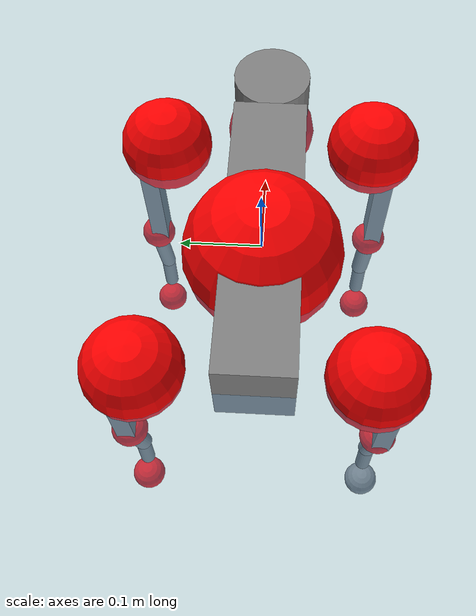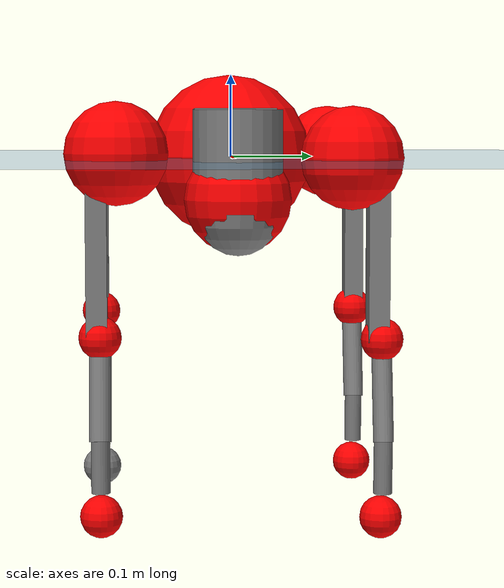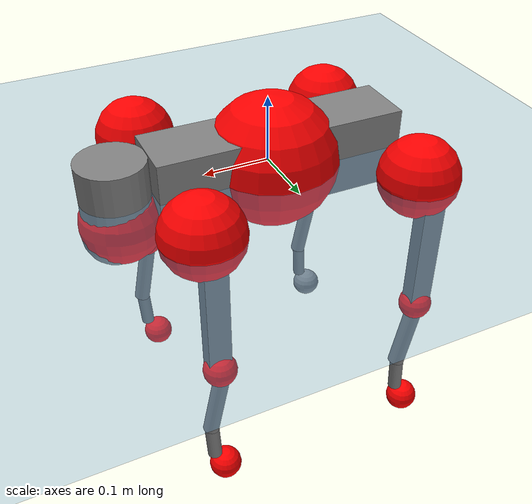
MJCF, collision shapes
<mujoco model="go2">
  <compiler angle="radian" assetdir="assets" balanceinertia="true" inertiafromgeom="false"/>

  <option timestep="0.005" density="1.2" viscosity="2e-05"/>

  <size nkey="1"/>

  <visual>
    <quality shadowsize="8192"/>
    <map shadowclip="0.5"/>
  </visual>

  <default>
    <default class="/">
      <geom contype="0" conaffinity="0" group="1" solref="-1000 -80"/>
      <site size="0.01 0.005 0.005" group="5"/>
      <general forcelimited="true" biastype="affine" gainprm="20" biasprm="0 -20 -0.5"/>
      <default class="go2">
        <joint armature="0.01" damping="0.01" frictionloss="0.2"/>
        <geom condim="1" margin="0.001"/>
        <default class="visual">
          <geom type="mesh" group="2"/>
        </default>
        <default class="collision">
          <geom group="3"/>
          <default class="foot">
            <geom size="0.022 0 0" condim="6" priority="1" friction="0.8 0.02 0.01" solimp="0.015 1 0.022"/>
          </default>
        </default>
        <default class="reward_collision_sphere">
          <geom group="5" rgba="1 0 0 1"/>
        </default>
      </default>
    </default>
  </default>

  <asset>
    <texture type="skybox" colorspace="auto" name="//unnamed_texture_0" builtin="gradient" rgb1="0.95 0.95 0.95" rgb2="0.95 0.95 0.95" width="100" height="600"/>
    <texture type="2d" colorspace="auto" name="texplane" builtin="checker" rgb1="0.345 0.575 0.748" rgb2="0.345 0.575 0.748" markrgb="1 1 1" width="512" height="512"/>
    <material name="MatPlane" class="/" texture="texplane" texuniform="true" texrepeat="2 2" specular="0.9"/>
    <material name="metal" class="/" rgba="0.9 0.95 0.95 1"/>
    <material name="black" class="/" rgba="0 0 0 1"/>
    <material name="white" class="/"/>
    <material name="gray" class="/" rgba="0.671705 0.692426 0.77427 1"/>
    <mesh name="base_0" class="/" file="base_0.obj"/>
    <mesh name="base_1" class="/" file="base_1.obj"/>
    <mesh name="base_2" class="/" file="base_2.obj"/>
    <mesh name="base_3" class="/" file="base_3.obj"/>
    <mesh name="base_4" class="/" file="base_4.obj"/>
    <mesh name="hip_0" class="/" file="hip_0.obj"/>
    <mesh name="hip_1" class="/" file="hip_1.obj"/>
    <mesh name="thigh_0" class="/" file="thigh_0.obj"/>
    <mesh name="thigh_1" class="/" file="thigh_1.obj"/>
    <mesh name="thigh_mirror_0" class="/" file="thigh_mirror_0.obj"/>
    <mesh name="thigh_mirror_1" class="/" file="thigh_mirror_1.obj"/>
    <mesh name="calf_0" class="/" file="calf_0.obj"/>
    <mesh name="calf_1" class="/" file="calf_1.obj"/>
    <mesh name="calf_mirror_0" class="/" file="calf_mirror_0.obj"/>
    <mesh name="calf_mirror_1" class="/" file="calf_mirror_1.obj"/>
    <mesh name="foot" class="/" file="foot.obj"/>
  </asset>

  <worldbody>
    <geom name="floor" class="/" size="100 100 0.125" type="plane" group="0" material="MatPlane"/>
    <light name="toplight_shadow" class="/" pos="0 0 5" dir="0.0990148 0.0990148 -0.990148" type="directional" ambient="0.04 0.04 0.04" diffuse="0.55 0.55 0.55" specular="0.12 0.12 0.12"/>
    <light name="toplight_fill" class="/" pos="0 0 5" dir="0.0990148 0.0990148 -0.990148" type="directional" castshadow="false" ambient="0.04 0.04 0.04" diffuse="0.3 0.3 0.3" specular="0.08 0.08 0.08"/>
    <body name="trunk" childclass="go2" pos="-0.00701481 -0.00183331 9.15749e-05" quat="0.999996 0.000509367 -0.00261625 -0.000909806">
      <inertial pos="0.0238751 0.000307545 -0.0072375" quat="0.00764289 0.716605 0.00513844 0.697418" mass="7.64273" diaginertia="0.0430028 0.226796 0.0236565"/>
      <joint name="//unnamed_joint_0" type="free" armature="0" damping="0" frictionloss="0"/>
      <geom name="//unnamed_geom_1" class="visual" material="black" mesh="base_0"/>
      <geom name="//unnamed_geom_2" class="visual" material="black" mesh="base_1"/>
      <geom name="//unnamed_geom_3" class="visual" material="black" mesh="base_2"/>
      <geom name="//unnamed_geom_4" class="visual" material="white" mesh="base_3"/>
      <geom name="//unnamed_geom_5" class="visual" material="gray" mesh="base_4"/>
      <geom name="trunk_1" class="collision" size="0.188281 0.0467949 0.0570548" type="box"/>
      <geom name="trunk_2" class="collision" size="0.050048 0.0450432" pos="0.237181 0 0.00989244" type="cylinder"/>
      <geom name="trunk_3" class="collision" size="0.0470452" pos="0.243838 0 -0.0593547"/>
      <geom name="//unnamed_geom_9" class="reward_collision_sphere" size="0.100096"/>
      <geom name="//unnamed_geom_10" class="reward_collision_sphere" size="0.0600576" pos="0.233019 0 -0.044516"/>
      <site name="imu" pos="-0.0312437 -0.0041925 0.0157993" size="0.0100096"/>
      <camera name="track" pos="0 -2.36285 0" quat="0.707107 0.707107 0 0" mode="trackcom"/>
      <camera name="ego_camera" pos="0.25965 0 0.044516" quat="-0.5 -0.5 0.5 0.5"/>
      <body name="FL_hip" pos="0.161875 0.0531851 0.000248493" quat="1 -3.57644e-05 7.7733e-05 -4.53276e-05">
        <inertial pos="-0.00197868 0.00518936 -0.00313357" quat="0.49839 0.501999 0.496361 0.503219" mass="0.699019" diaginertia="0.000330213 0.00139899 0.000453848"/>
        <joint name="FL_hip_joint" pos="0 0 0" axis="0.99938 0.00775679 0.0343335" range="-1.17892 1.00108" armature="0.0103071" damping="0.0074827" frictionloss="0.192429"/>
        <geom name="//unnamed_geom_11" class="visual" material="metal" mesh="hip_0"/>
        <geom name="//unnamed_geom_12" class="visual" material="gray" mesh="hip_1"/>
        <geom name="//unnamed_geom_13" class="collision" size="0.0460442 0.0200192" pos="0 0.0945141 0" quat="0.707107 0.707107 0 0" type="cylinder"/>
        <geom name="//unnamed_geom_14" class="reward_collision_sphere" size="0.0600576" pos="0 0.0826998 0"/>
        <body name="FL_thigh" pos="-0.000394178 0.113057 -0.00118102" quat="0.999998 -9.55844e-05 -0.000409715 0.00211554">
          <inertial pos="-0.00582481 -0.0245004 -0.0268985" quat="0.82998 0.0853117 -0.0195727 0.550883" mass="1.17105" diaginertia="0.00245018 0.0142481 0.000782112"/>
          <joint name="FL_thigh_joint" pos="0 0 0" axis="0.00678437 0.999976 -0.00115206" stiffness="0.0376425" range="-1.56809 3.49324" armature="0.0097939" damping="0" frictionloss="0.188584"/>
          <geom name="//unnamed_geom_15" class="visual" material="metal" mesh="thigh_0"/>
          <geom name="//unnamed_geom_16" class="visual" material="gray" mesh="thigh_1"/>
          <geom name="//unnamed_geom_17" class="collision" size="0.106602 0.0122618 0.0170163" pos="0 0 -0.105355" quat="0.707107 0 0.707107 0" type="box"/>
          <body name="FL_calf" pos="-0.000709109 0.0054325 -0.209695" quat="1 -0.000491986 -0.000679166 0.000154574">
            <inertial pos="0.00918675 -0.000115323 -0.142001" quat="0.710858 0.00484142 -0.00614283 0.703292" mass="0.239398" diaginertia="0.000548941 0.00298831 4.66139e-05"/>
            <joint name="FL_calf_joint" pos="0 0 0" axis="-0.00902684 0.999953 -0.00367536" range="-2.61365 -0.797909" armature="0.00979286" damping="0.0270627" frictionloss="0.194072"/>
            <geom name="//unnamed_geom_18" class="visual" material="gray" mesh="calf_0"/>
            <geom name="//unnamed_geom_19" class="visual" material="black" mesh="calf_1"/>
            <geom name="FL_calf0" class="collision" size="0.0120115 0.0600576" pos="0.0066577 0 -0.0593547" quat="0.994493 0 -0.104807 0" type="cylinder"/>
            <geom name="//unnamed_geom_21" class="collision" size="0.0110106 0.0325312" pos="0.0166442 0 -0.146408" quat="0.999688 0 0.0249974 0" type="cylinder"/>
            <geom name="//unnamed_geom_22" class="visual" pos="0 0 -0.210709" quat="1 0 0 0" material="black" mesh="foot"/>
            <geom name="FL_foot" class="foot" size="0.0162418" pos="-0.00166442 0 -0.210709"/>
            <geom name="//unnamed_geom_24" class="reward_collision_sphere" size="0.025024"/>
            <geom name="//unnamed_geom_25" class="reward_collision_sphere" size="0.025024" pos="-0.00166442 0 -0.210709"/>
            <site name="FL_foot" class="foot" pos="-0.00166442 0 -0.210709" size="0.0100096"/>
          </body>
        </body>
      </body>
      <body name="FR_hip" pos="0.164318 -0.0538731 0.00594422" quat="0.999998 0.000688511 0.00134696 0.000902477">
        <inertial pos="-0.00502297 0.00254674 0.000270698" quat="0.484493 0.500802 0.51347 0.500813" mass="0.689987" diaginertia="0.0003711 0.00139346 0.000471371"/>
        <joint name="FR_hip_joint" pos="0 0 0" axis="0.999996 -0.0025844 0.00129336" range="-1.02543 1.0449" armature="0.0107648" damping="0.0211923" frictionloss="0.243531"/>
        <geom name="//unnamed_geom_26" class="visual" pos="0 1.67421e-09 7.18102e-08" quat="4.63268e-05 1 0 0" material="metal" mesh="hip_0"/>
        <geom name="//unnamed_geom_27" class="visual" pos="0 2.71409e-09 -1.77614e-07" quat="4.63268e-05 1 0 0" material="gray" mesh="hip_1"/>
        <geom name="//unnamed_geom_28" class="collision" size="0.0460442 0.0200192" pos="0 -0.0945141 0" quat="0.707107 0.707107 0 0" type="cylinder"/>
        <geom name="//unnamed_geom_29" class="reward_collision_sphere" size="0.0600576" pos="0 -0.0826998 0"/>
        <body name="FR_thigh" pos="-0.000229033 -0.106096 -0.000795345" quat="0.999999 -0.000674103 -0.000293467 -0.000786533">
          <inertial pos="-0.00399139 0.0295642 -0.0343129" quat="0.545664 -0.0134775 0.0842546 0.833649" mass="1.1347" diaginertia="0.00231953 0.0132528 0.000791925"/>
          <joint name="FR_thigh_joint" pos="0 0 0" axis="0.016714 -0.999856 -0.00281247" stiffness="0.00637873" range="-3.54042 1.49424" armature="0.0102087" damping="0.00377307" frictionloss="0.202555"/>
          <geom name="//unnamed_geom_30" class="visual" material="metal" mesh="thigh_mirror_0"/>
          <geom name="//unnamed_geom_31" class="visual" material="gray" mesh="thigh_mirror_1"/>
          <geom name="//unnamed_geom_32" class="collision" size="0.106602 0.0122618 0.0170163" pos="0 0 -0.105355" quat="0.707107 0 0.707107 0" type="box"/>
          <body name="FR_calf" pos="-0.00162774 0.00354705 -0.21184" quat="1 -0.000159049 0.000209025 3.53776e-05">
            <inertial pos="0.00591628 0.00257772 -0.139351" quat="0.706454 -0.0274848 0.0107446 0.707144" mass="0.23827" diaginertia="0.000598759 0.00338408 5.21371e-05"/>
            <joint name="FR_calf_joint" pos="0 0 0" axis="-0.00179116 -0.999574 0.0291206" stiffness="0.0266041" range="0.873806 2.67077" armature="0.00930905" damping="0" frictionloss="0.193923"/>
            <geom name="//unnamed_geom_33" class="visual" material="gray" mesh="calf_mirror_0"/>
            <geom name="//unnamed_geom_34" class="visual" material="black" mesh="calf_mirror_1"/>
            <geom name="FR_calf0" class="collision" size="0.0130125 0.0600576" pos="0.00832212 0 -0.0593547" quat="0.995004 0 -0.0998334 0" type="cylinder"/>
            <geom name="//unnamed_geom_36" class="collision" size="0.0110106 0.0325312" pos="0.0166442 0 -0.146408" quat="0.999688 0 0.0249974 0" type="cylinder"/>
            <geom name="//unnamed_geom_37" class="visual" pos="0 0 -0.210709" quat="1 0 0 0" material="black" mesh="foot"/>
            <geom name="FR_foot" class="foot" size="0.0221926" pos="-0.00166442 0 -0.210709"/>
            <geom name="//unnamed_geom_39" class="reward_collision_sphere" size="0.025024"/>
            <geom name="//unnamed_geom_40" class="reward_collision_sphere" size="0.025024" pos="-0.00166442 0 -0.210709"/>
            <site name="FR_foot" class="foot" pos="-0.00166442 0 -0.210709" size="0.0100096"/>
          </body>
        </body>
      </body>
      <body name="RL_hip" pos="-0.163376 0.0553864 0.00367546" quat="1 0.000496857 -0.00055192 1.98833e-05">
        <inertial pos="0.00516698 -0.00380605 0.00299614" quat="0.511186 0.494891 0.520695 0.471857" mass="0.647214" diaginertia="0.000371933 0.00139585 0.000436174"/>
        <joint name="RL_hip_joint" pos="0 0 0" axis="-0.999693 -0.0046167 0.0243414" range="-1.09237 1.07221" armature="0.0118089" damping="0" frictionloss="0.150185"/>
        <geom name="//unnamed_geom_41" class="visual" pos="1.368e-09 0 2.68159e-07" quat="4.63268e-05 0 1 0" material="metal" mesh="hip_0"/>
        <geom name="//unnamed_geom_42" class="visual" pos="2.21769e-09 0 2.37819e-07" quat="4.63268e-05 0 1 0" material="gray" mesh="hip_1"/>
        <geom name="//unnamed_geom_43" class="collision" size="0.0460442 0.0200192" pos="0 0.0945141 0" quat="0.707107 0.707107 0 0" type="cylinder"/>
        <geom name="//unnamed_geom_44" class="reward_collision_sphere" size="0.0600576" pos="0 0.0826998 0"/>
        <body name="RL_thigh" pos="-0.000487221 0.11758 -0.00499516" quat="0.999999 0.000339074 0.00106535 -0.00018446">
          <inertial pos="-0.00278027 -0.0251535 -0.0298871" quat="0.831093 0.0834938 -0.0155047 0.549611" mass="1.08978" diaginertia="0.00246895 0.0141513 0.000830082"/>
          <joint name="RL_thigh_joint" pos="0 0 0" axis="0.0045895 0.999963 -0.00731634" range="-0.493006 4.55303" armature="0.00853312" damping="0.00863221" frictionloss="0.202938"/>
          <geom name="//unnamed_geom_45" class="visual" material="metal" mesh="thigh_0"/>
          <geom name="//unnamed_geom_46" class="visual" material="gray" mesh="thigh_1"/>
          <geom name="//unnamed_geom_47" class="collision" size="0.106602 0.0122618 0.0170163" pos="0 0 -0.105355" quat="0.707107 0 0.707107 0" type="box"/>
          <body name="RL_calf" pos="5.21229e-05 -0.000620407 -0.204881" quat="0.999999 0.000258336 -0.000521633 0.000993173">
            <inertial pos="0.00413571 -0.00730925 -0.138313" quat="0.709896 0.00395607 -0.00642153 0.704266" mass="0.246179" diaginertia="0.000610698 0.00349103 5.54601e-05"/>
            <joint name="RL_calf_joint" pos="0 0 0" axis="-0.0218368 0.99976 -0.0015923" stiffness="0.0366277" range="-2.71261 -0.835625" armature="0.00954945" damping="0.018782" frictionloss="0.136943"/>
            <geom name="//unnamed_geom_48" class="visual" material="gray" mesh="calf_0"/>
            <geom name="//unnamed_geom_49" class="visual" material="black" mesh="calf_1"/>
            <geom name="RL_calf0" class="collision" size="0.0130125 0.0600576" pos="0.00832212 0 -0.0593547" quat="0.995004 0 -0.0998334 0" type="cylinder"/>
            <geom name="//unnamed_geom_51" class="collision" size="0.0110106 0.0325312" pos="0.0166442 0 -0.146408" quat="0.999688 0 0.0249974 0" type="cylinder"/>
            <geom name="//unnamed_geom_52" class="visual" pos="0 0 -0.210709" quat="1 0 0 0" material="black" mesh="foot"/>
            <geom name="RL_foot" class="foot" size="0.0222135" pos="-0.00166442 0 -0.210709"/>
            <geom name="//unnamed_geom_54" class="reward_collision_sphere" size="0.025024"/>
            <geom name="//unnamed_geom_55" class="reward_collision_sphere" size="0.025024" pos="-0.00166442 0 -0.210709"/>
            <site name="RL_foot" class="foot" pos="-0.00166442 0 -0.210709" size="0.0100096"/>
          </body>
        </body>
      </body>
      <body name="RR_hip" pos="-0.159574 -0.0544217 -0.00391387" quat="0.999995 -0.000125577 -0.000656822 0.0029773">
        <inertial pos="-0.00189607 -0.0052621 0.00612083" quat="0.497279 0.495608 0.508281 0.498735" mass="0.673255" diaginertia="0.000347707 0.0013406 0.000438788"/>
        <joint name="RR_hip_joint" pos="0 0 0" axis="-0.99943 -0.0154069 -0.030045" range="-1.024 1.09069" armature="0.0100676" damping="0" frictionloss="0.222756"/>
        <geom name="//unnamed_geom_56" class="visual" pos="-1.35591e-09 1.67421e-09 1.96349e-07" quat="2.14617e-09 4.63268e-05 4.63268e-05 -1" material="metal" mesh="hip_0"/>
        <geom name="//unnamed_geom_57" class="visual" pos="-2.24759e-09 2.71409e-09 4.15433e-07" quat="2.14617e-09 4.63268e-05 4.63268e-05 -1" material="gray" mesh="hip_1"/>
        <geom name="//unnamed_geom_58" class="collision" size="0.0460442 0.0200192" pos="0 -0.0945141 0" quat="0.707107 0.707107 0 0" type="cylinder"/>
        <geom name="//unnamed_geom_59" class="reward_collision_sphere" size="0.0600576" pos="0 -0.0826998 0"/>
        <body name="RR_thigh" pos="-0.00122714 -0.112605 0.00662706" quat="1 -0.000160651 -0.000117188 0.000146409">
          <inertial pos="-0.00558531 0.0260646 -0.0324136" quat="0.551612 -0.0200645 0.084758 0.82954" mass="1.22332" diaginertia="0.00231283 0.0131569 0.000827647"/>
          <joint name="RR_thigh_joint" pos="0 0 0" axis="-0.0115461 -0.999898 -0.00836355" range="-4.55188 0.433897" armature="0.00888144" damping="0.0182369" frictionloss="0.222856"/>
          <geom name="//unnamed_geom_60" class="visual" material="metal" mesh="thigh_mirror_0"/>
          <geom name="//unnamed_geom_61" class="visual" material="gray" mesh="thigh_mirror_1"/>
          <geom name="//unnamed_geom_62" class="collision" size="0.106602 0.0122618 0.0170163" pos="0 0 -0.105355" quat="0.707107 0 0.707107 0" type="box"/>
          <body name="RR_calf" pos="0.003957 0.00243456 -0.211098" quat="1 -0.000678368 0.000202341 0.000201011">
            <inertial pos="0.00799786 0.00314481 -0.14023" quat="0.702092 -0.00102222 0.000983241 0.712084" mass="0.238709" diaginertia="0.000607063 0.00343238 4.83349e-05"/>
            <joint name="RR_calf_joint" pos="0 0 0" axis="-0.022106 -0.999658 0.0139771" range="0.819642 2.73533" armature="0.00918345" damping="0" frictionloss="0.181423"/>
            <geom name="//unnamed_geom_63" class="visual" material="gray" mesh="calf_mirror_0"/>
            <geom name="//unnamed_geom_64" class="visual" material="black" mesh="calf_mirror_1"/>
            <geom name="RR_calf0" class="collision" size="0.0130125 0.0600576" pos="0.00832212 0 -0.0593547" quat="0.995004 0 -0.0998334 0" type="cylinder"/>
            <geom name="//unnamed_geom_66" class="collision" size="0.0110106 0.0325312" pos="0.0166442 0 -0.146408" quat="0.999688 0 0.0249974 0" type="cylinder"/>
            <geom name="//unnamed_geom_67" class="visual" pos="0 0 -0.210709" quat="1 0 0 0" material="black" mesh="foot"/>
            <geom name="RR_foot" class="foot" size="0.0252293" pos="-0.00166442 0 -0.210709"/>
            <geom name="//unnamed_geom_69" class="reward_collision_sphere" size="0.025024"/>
            <geom name="//unnamed_geom_70" class="reward_collision_sphere" size="0.025024" pos="-0.00166442 0 -0.210709"/>
            <site name="RR_foot" class="foot" pos="-0.00166442 0 -0.210709" size="0.0100096"/>
          </body>
        </body>
      </body>
    </body>
  </worldbody>

  <contact>
    <pair class="/" geom1="floor" geom2="FL_foot" name="//unnamed_contact_0"/>
    <pair class="/" geom1="floor" geom2="FR_foot" name="//unnamed_contact_1"/>
    <pair class="/" geom1="floor" geom2="RL_foot" name="//unnamed_contact_2"/>
    <pair class="/" geom1="floor" geom2="RR_foot" name="//unnamed_contact_3"/>
  </contact>

  <actuator>
    <general name="FL_hip" class="/" joint="FL_hip_joint" forcerange="-24.0704 24.0704" gainprm="19.4595" biasprm="0 -19.4595 -0.532624"/>
    <general name="FL_thigh" class="/" joint="FL_thigh_joint" forcerange="-24.3601 24.3601" gainprm="19.4595" biasprm="0 -19.4595 -0.532624"/>
    <general name="FL_calf" class="/" joint="FL_calf_joint" forcerange="-41.2041 41.2041" gainprm="19.4595" biasprm="0 -19.4595 -0.532624"/>
    <general name="FR_hip" class="/" joint="FR_hip_joint" forcerange="-22.7411 22.7411" gainprm="19.4595" biasprm="0 -19.4595 -0.532624"/>
    <general name="FR_thigh" class="/" joint="FR_thigh_joint" forcerange="-23.1379 23.1379" gainprm="19.4595" biasprm="0 -19.4595 -0.532624"/>
    <general name="FR_calf" class="/" joint="FR_calf_joint" forcerange="-44.3038 44.3038" gainprm="19.4595" biasprm="0 -19.4595 -0.532624"/>
    <general name="RL_hip" class="/" joint="RL_hip_joint" forcerange="-18.3091 18.3091" gainprm="19.4595" biasprm="0 -19.4595 -0.532624"/>
    <general name="RL_thigh" class="/" joint="RL_thigh_joint" forcerange="-24.0756 24.0756" gainprm="19.4595" biasprm="0 -19.4595 -0.532624"/>
    <general name="RL_calf" class="/" joint="RL_calf_joint" forcerange="-55.6917 55.6917" gainprm="19.4595" biasprm="0 -19.4595 -0.532624"/>
    <general name="RR_hip" class="/" joint="RR_hip_joint" forcerange="-25.6628 25.6628" gainprm="19.4595" biasprm="0 -19.4595 -0.532624"/>
    <general name="RR_thigh" class="/" joint="RR_thigh_joint" forcerange="-18.7141 18.7141" gainprm="19.4595" biasprm="0 -19.4595 -0.532624"/>
    <general name="RR_calf" class="/" joint="RR_calf_joint" forcerange="-50.7095 50.7095" gainprm="19.4595" biasprm="0 -19.4595 -0.532624"/>
  </actuator>

  <sensor>
    <gyro site="imu" name="imu_angular_velocity"/>
    <velocimeter site="imu" name="imu_linear_velocity"/>
    <framelinvel objtype="site" objname="FL_foot" name="FL_foot_global_linear_velocity"/>
    <framelinvel objtype="site" objname="FR_foot" name="FR_foot_global_linear_velocity"/>
    <framelinvel objtype="site" objname="RL_foot" name="RL_foot_global_linear_velocity"/>
    <framelinvel objtype="site" objname="RR_foot" name="RR_foot_global_linear_velocity"/>
  </sensor>

  <keyframe>
    <key name="home" qpos="0 0 0.325 1 0 0 0 0.1 0.8 -1.5 -0.1 -0.8 1.5 -0.1 0.8 -1.5 0.1 -0.8 1.5"/>
  </keyframe>
</mujoco>
